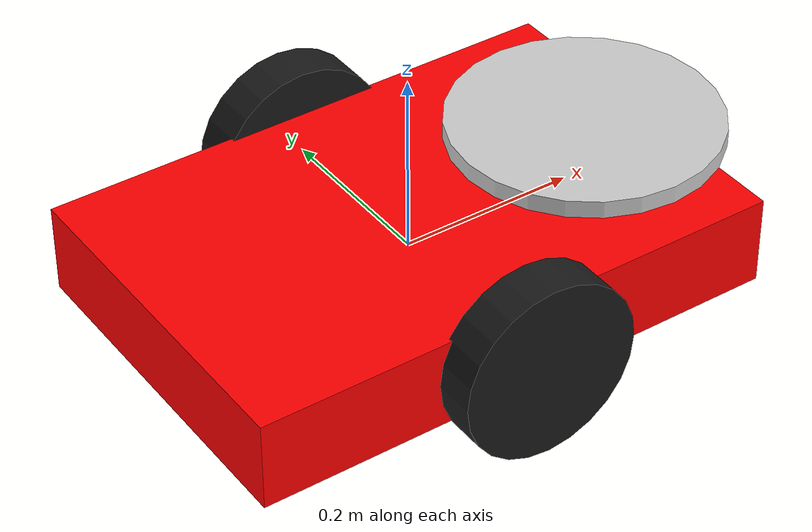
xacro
<?xml version="1.0"?>
<robot xmlns:xacro="http://www.ros.org/wiki/xacro" name="battlebot">

  <xacro:property name="PI" value="3.1415926535897931"/>
  <xacro:property name="chassis_mass" value="5.0"/>
  <xacro:property name="wheel_mass" value="0.5"/>
  <xacro:property name="weapon_mass" value="1.5"/>
  <xacro:property name="wheel_radius" value="0.1"/>
  <xacro:property name="chassis_width" value="0.4"/>
  <xacro:property name="chassis_length" value="0.6"/>
  <xacro:property name="chassis_height" value="0.1"/>
  <xacro:property name="weapon_radius" value="0.15"/>
  <xacro:property name="weapon_thickness" value="0.02"/>

  <material name="red">
    <color rgba="1.0 0.0 0.0 1.0"/>
  </material>

  <material name="silver">
    <color rgba="0.8 0.8 0.8 1.0"/>
  </material>

  <material name="black">
    <color rgba="0.1 0.1 0.1 1.0"/>
  </material>

  <link name="base_link">
    <inertial>
      <mass value="${chassis_mass}"/>
      <origin xyz="0 0 0" rpy="0 0 0"/>
      <inertia ixx="${chassis_mass/12.0 * (chassis_height*chassis_height + chassis_width*chassis_width)}"
               ixy="0.0" ixz="0.0"
               iyy="${chassis_mass/12.0 * (chassis_length*chassis_length + chassis_height*chassis_height)}"
               iyz="0.0"
               izz="${chassis_mass/12.0 * (chassis_length*chassis_length + chassis_width*chassis_width)}"/>
    </inertial>

    <collision>
      <geometry>
        <box size="${chassis_length} ${chassis_width} ${chassis_height}"/>
      </geometry>
    </collision>

    <visual>
      <geometry>
        <box size="${chassis_length} ${chassis_width} ${chassis_height}"/>
      </geometry>
      <material name="red"/>
    </visual>
  </link>

  <link name="right_wheel">
    <inertial>
      <mass value="${wheel_mass}"/>
      <origin xyz="0 0 0" rpy="${PI/2} 0 0"/>
      <inertia ixx="${wheel_mass * wheel_radius * wheel_radius / 2.0}"
               ixy="0.0" ixz="0.0"
               iyy="${wheel_mass * wheel_radius * wheel_radius / 2.0}"
               iyz="0.0"
               izz="${wheel_mass * wheel_radius * wheel_radius}"/>
    </inertial>

    <collision>
      <origin xyz="0 0 0" rpy="${PI/2} 0 0"/>
      <geometry>
        <cylinder radius="${wheel_radius}" length="0.05"/>
      </geometry>
    </collision>

    <visual>
      <origin xyz="0 0 0" rpy="${PI/2} 0 0"/>
      <geometry>
        <cylinder radius="${wheel_radius}" length="0.05"/>
      </geometry>
      <material name="black"/>
    </visual>
  </link>

  <link name="left_wheel">
    <inertial>
      <mass value="${wheel_mass}"/>
      <origin xyz="0 0 0" rpy="${PI/2} 0 0"/>
      <inertia ixx="${wheel_mass * wheel_radius * wheel_radius / 2.0}"
               ixy="0.0" ixz="0.0"
               iyy="${wheel_mass * wheel_radius * wheel_radius / 2.0}"
               iyz="0.0"
               izz="${wheel_mass * wheel_radius * wheel_radius}"/>
    </inertial>

    <collision>
      <origin xyz="0 0 0" rpy="${PI/2} 0 0"/>
      <geometry>
        <cylinder radius="${wheel_radius}" length="0.05"/>
      </geometry>
    </collision>

    <visual>
      <origin xyz="0 0 0" rpy="${PI/2} 0 0"/>
      <geometry>
        <cylinder radius="${wheel_radius}" length="0.05"/>
      </geometry>
      <material name="black"/>
    </visual>
  </link>

  <link name="weapon">
    <inertial>
      <mass value="${weapon_mass}"/>
      <origin xyz="0 0 0" rpy="0 0 0"/>
      <inertia ixx="${weapon_mass * (3*weapon_radius*weapon_radius + weapon_thickness*weapon_thickness) / 12.0}"
               ixy="0.0" ixz="0.0"
               iyy="${weapon_mass * (3*weapon_radius*weapon_radius + weapon_thickness*weapon_thickness) / 12.0}"
               iyz="0.0"
               izz="${weapon_mass * weapon_radius * weapon_radius / 2.0}"/>
    </inertial>

    <collision>
      <geometry>
        <cylinder radius="${weapon_radius}" length="${weapon_thickness}"/>
      </geometry>
    </collision>

    <visual>
      <geometry>
        <cylinder radius="${weapon_radius}" length="${weapon_thickness}"/>
      </geometry>
      <material name="silver"/>
    </visual>
  </link>

  <joint name="right_wheel_joint" type="continuous">
    <parent link="base_link"/>
    <child link="right_wheel"/>
    <origin xyz="0 -${chassis_width/2 + 0.02} 0" rpy="0 0 0"/>
    <axis xyz="0 1 0"/>
    <dynamics damping="0.1" friction="0.1"/>
  </joint>

  <joint name="left_wheel_joint" type="continuous">
    <parent link="base_link"/>
    <child link="left_wheel"/>
    <origin xyz="0 ${chassis_width/2 + 0.02} 0" rpy="0 0 0"/>
    <axis xyz="0 1 0"/>
    <dynamics damping="0.1" friction="0.1"/>
  </joint>

  <joint name="weapon_joint" type="continuous">
    <parent link="base_link"/>
    <child link="weapon"/>
    <origin xyz="${chassis_length/2 - weapon_radius/2} 0 ${chassis_height/2 + weapon_thickness/2}" rpy="0 0 0"/>
    <axis xyz="0 0 1"/>
    <dynamics damping="0.01" friction="0.01"/>
  </joint>

  <gazebo>
    <plugin name="differential_drive_controller" filename="libgazebo_ros_diff_drive.so">
      <updateRate>100</updateRate>
      <leftJoint>left_wheel_joint</leftJoint>
      <rightJoint>right_wheel_joint</rightJoint>
      <wheelSeparation>${chassis_width + 0.04}</wheelSeparation>
      <wheelDiameter>${2 * wheel_radius}</wheelDiameter>
      <wheelAcceleration>1.0</wheelAcceleration>
      <wheelTorque>20</wheelTorque>
      <commandTopic>cmd_vel</commandTopic>
      <odometryTopic>odom</odometryTopic>
      <odometryFrame>odom</odometryFrame>
      <robotBaseFrame>base_link</robotBaseFrame>
      <publishOdomTF>true</publishOdomTF>
      <publishWheelTF>false</publishWheelTF>
      <odometrySource>world</odometrySource>
      <publishTf>true</publishTf>
    </plugin>
  </gazebo>

  <gazebo>
    <plugin name="weapon_controller" filename="libgazebo_ros_joint_state_publisher.so">
      <jointName>weapon_joint</jointName>
      <updateRate>100</updateRate>
    </plugin>
  </gazebo>

  <gazebo>
    <plugin name="weapon_motor" filename="libgazebo_ros_joint_motor.so">
      <joint>weapon_joint</joint>
      <topic>weapon_speed</topic>
      <jointType>velocity</jointType>
    </plugin>
  </gazebo>

</robot>
